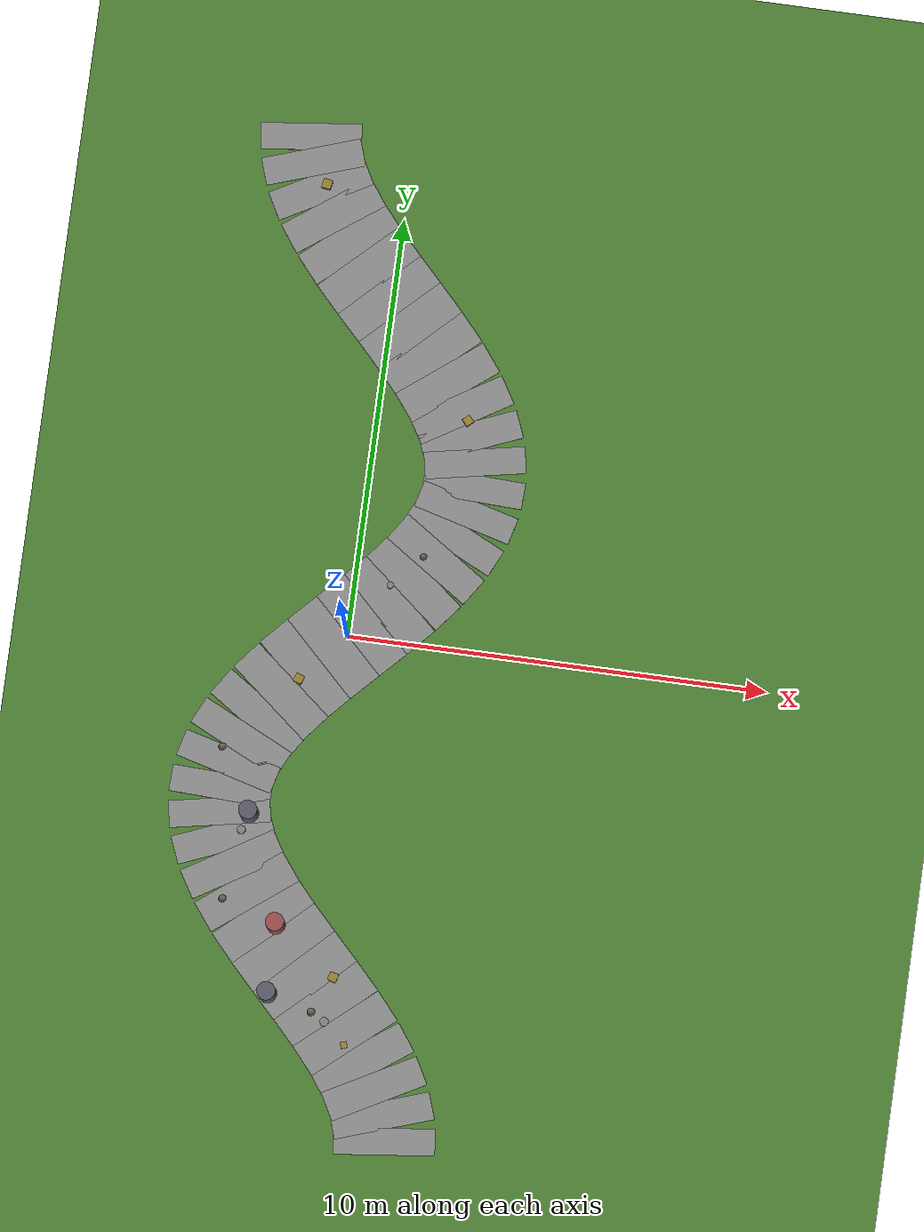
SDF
<?xml version="1.0" ?>
<sdf version="1.9">
  <world name="s_curve">
    <physics name="1ms" type="ignore">
      <max_step_size>0.001</max_step_size>
      <real_time_factor>1.0</real_time_factor>
    </physics>
    <plugin filename="gz-sim-physics-system" name="gz::sim::systems::Physics"/>
    <plugin filename="gz-sim-scene-broadcaster-system" name="gz::sim::systems::SceneBroadcaster"/>
    <plugin filename="gz-sim-sensors-system" name="gz::sim::systems::Sensors">
      <render_engine>ogre2</render_engine>
    </plugin>
    <plugin filename="gz-sim-user-commands-system" name="gz::sim::systems::UserCommands"/>

    <light type="directional" name="sun">
      <cast_shadows>true</cast_shadows>
      <pose>0 0 10 0 0 0</pose>
      <diffuse>0.8 0.8 0.8 1</diffuse>
      <specular>0.2 0.2 0.2 1</specular>
      <attenuation><range>1000</range><constant>0.9</constant><linear>0.01</linear><quadratic>0.001</quadratic></attenuation>
      <direction>-0.5 0.1 -0.9</direction>
    </light>

    <!-- 레이아웃 5: S자 커브형 -->

    <model name="ground_plane_visual">
      <static>true</static>
      <pose>0 0 -0.01 0 0 0</pose>
      <link name="link">
        <collision name="collision"><geometry><box><size>60.0 60.0 0.02</size></box></geometry></collision>
        <visual name="visual"><geometry><box><size>60.0 60.0 0.02</size></box></geometry>
          <material><ambient>0.3 0.5 0.2 1</ambient><diffuse>0.3 0.5 0.2 1</diffuse></material></visual>
      </link>
    </model>

    <model name="scurve_tile_0">
      <static>true</static>
      <pose>2.465 -11.700 0.010 0 0 0.1146</pose>
      <link name="link">
        <collision name="collision"><geometry><box><size>2.4 0.634 0.02</size></box></geometry></collision>
        <visual name="visual"><geometry><box><size>2.4 0.634 0.02</size></box></geometry>
          <material><ambient>0.55 0.55 0.55 1</ambient><diffuse>0.55 0.55 0.55 1</diffuse></material></visual>
      </link>
    </model>

    <model name="scurve_tile_1">
      <static>true</static>
      <pose>2.329 -11.100 0.010 0 0 0.3269</pose>
      <link name="link">
        <collision name="collision"><geometry><box><size>2.4 0.665 0.02</size></box></geometry></collision>
        <visual name="visual"><geometry><box><size>2.4 0.665 0.02</size></box></geometry>
          <material><ambient>0.55 0.55 0.55 1</ambient><diffuse>0.55 0.55 0.55 1</diffuse></material></visual>
      </link>
    </model>

    <model name="scurve_tile_2">
      <static>true</static>
      <pose>2.064 -10.500 0.010 0 0 0.4984</pose>
      <link name="link">
        <collision name="collision"><geometry><box><size>2.4 0.717 0.02</size></box></geometry></collision>
        <visual name="visual"><geometry><box><size>2.4 0.717 0.02</size></box></geometry>
          <material><ambient>0.55 0.55 0.55 1</ambient><diffuse>0.55 0.55 0.55 1</diffuse></material></visual>
      </link>
    </model>

    <model name="scurve_tile_3">
      <static>true</static>
      <pose>1.685 -9.900 0.010 0 0 0.6235</pose>
      <link name="link">
        <collision name="collision"><geometry><box><size>2.4 0.776 0.02</size></box></geometry></collision>
        <visual name="visual"><geometry><box><size>2.4 0.776 0.02</size></box></geometry>
          <material><ambient>0.55 0.55 0.55 1</ambient><diffuse>0.55 0.55 0.55 1</diffuse></material></visual>
      </link>
    </model>

    <model name="scurve_tile_4">
      <static>true</static>
      <pose>1.213 -9.300 0.010 0 0 0.7072</pose>
      <link name="link">
        <collision name="collision"><geometry><box><size>2.4 0.829 0.02</size></box></geometry></collision>
        <visual name="visual"><geometry><box><size>2.4 0.829 0.02</size></box></geometry>
          <material><ambient>0.55 0.55 0.55 1</ambient><diffuse>0.55 0.55 0.55 1</diffuse></material></visual>
      </link>
    </model>

    <model name="scurve_tile_5">
      <static>true</static>
      <pose>0.674 -8.700 0.010 0 0 0.7559</pose>
      <link name="link">
        <collision name="collision"><geometry><box><size>2.4 0.866 0.02</size></box></geometry></collision>
        <visual name="visual"><geometry><box><size>2.4 0.866 0.02</size></box></geometry>
          <material><ambient>0.55 0.55 0.55 1</ambient><diffuse>0.55 0.55 0.55 1</diffuse></material></visual>
      </link>
    </model>

    <model name="scurve_tile_6">
      <static>true</static>
      <pose>0.097 -8.100 0.010 0 0 0.7746</pose>
      <link name="link">
        <collision name="collision"><geometry><box><size>2.4 0.882 0.02</size></box></geometry></collision>
        <visual name="visual"><geometry><box><size>2.4 0.882 0.02</size></box></geometry>
          <material><ambient>0.55 0.55 0.55 1</ambient><diffuse>0.55 0.55 0.55 1</diffuse></material></visual>
      </link>
    </model>

    <model name="scurve_tile_7">
      <static>true</static>
      <pose>-0.484 -7.500 0.010 0 0 0.7653</pose>
      <link name="link">
        <collision name="collision"><geometry><box><size>2.4 0.874 0.02</size></box></geometry></collision>
        <visual name="visual"><geometry><box><size>2.4 0.874 0.02</size></box></geometry>
          <material><ambient>0.55 0.55 0.55 1</ambient><diffuse>0.55 0.55 0.55 1</diffuse></material></visual>
      </link>
    </model>

    <model name="scurve_tile_8">
      <static>true</static>
      <pose>-1.039 -6.900 0.010 0 0 0.7270</pose>
      <link name="link">
        <collision name="collision"><geometry><box><size>2.4 0.843 0.02</size></box></geometry></collision>
        <visual name="visual"><geometry><box><size>2.4 0.843 0.02</size></box></geometry>
          <material><ambient>0.55 0.55 0.55 1</ambient><diffuse>0.55 0.55 0.55 1</diffuse></material></visual>
      </link>
    </model>

    <model name="scurve_tile_9">
      <static>true</static>
      <pose>-1.537 -6.300 0.010 0 0 0.6557</pose>
      <link name="link">
        <collision name="collision"><geometry><box><size>2.4 0.795 0.02</size></box></geometry></collision>
        <visual name="visual"><geometry><box><size>2.4 0.795 0.02</size></box></geometry>
          <material><ambient>0.55 0.55 0.55 1</ambient><diffuse>0.55 0.55 0.55 1</diffuse></material></visual>
      </link>
    </model>

    <model name="scurve_tile_10">
      <static>true</static>
      <pose>-1.950 -5.700 0.010 0 0 0.5451</pose>
      <link name="link">
        <collision name="collision"><geometry><box><size>2.4 0.737 0.02</size></box></geometry></collision>
        <visual name="visual"><geometry><box><size>2.4 0.737 0.02</size></box></geometry>
          <material><ambient>0.55 0.55 0.55 1</ambient><diffuse>0.55 0.55 0.55 1</diffuse></material></visual>
      </link>
    </model>

    <model name="scurve_tile_11">
      <static>true</static>
      <pose>-2.255 -5.100 0.010 0 0 0.3892</pose>
      <link name="link">
        <collision name="collision"><geometry><box><size>2.4 0.681 0.02</size></box></geometry></collision>
        <visual name="visual"><geometry><box><size>2.4 0.681 0.02</size></box></geometry>
          <material><ambient>0.55 0.55 0.55 1</ambient><diffuse>0.55 0.55 0.55 1</diffuse></material></visual>
      </link>
    </model>

    <model name="scurve_tile_12">
      <static>true</static>
      <pose>-2.435 -4.500 0.010 0 0 0.1888</pose>
      <link name="link">
        <collision name="collision"><geometry><box><size>2.4 0.641 0.02</size></box></geometry></collision>
        <visual name="visual"><geometry><box><size>2.4 0.641 0.02</size></box></geometry>
          <material><ambient>0.55 0.55 0.55 1</ambient><diffuse>0.55 0.55 0.55 1</diffuse></material></visual>
      </link>
    </model>

    <model name="scurve_tile_13">
      <static>true</static>
      <pose>-2.481 -3.900 0.010 0 0 -0.0384</pose>
      <link name="link">
        <collision name="collision"><geometry><box><size>2.4 0.630 0.02</size></box></geometry></collision>
        <visual name="visual"><geometry><box><size>2.4 0.630 0.02</size></box></geometry>
          <material><ambient>0.55 0.55 0.55 1</ambient><diffuse>0.55 0.55 0.55 1</diffuse></material></visual>
      </link>
    </model>

    <model name="scurve_tile_14">
      <static>true</static>
      <pose>-2.389 -3.300 0.010 0 0 -0.2599</pose>
      <link name="link">
        <collision name="collision"><geometry><box><size>2.4 0.652 0.02</size></box></geometry></collision>
        <visual name="visual"><geometry><box><size>2.4 0.652 0.02</size></box></geometry>
          <material><ambient>0.55 0.55 0.55 1</ambient><diffuse>0.55 0.55 0.55 1</diffuse></material></visual>
      </link>
    </model>

    <model name="scurve_tile_15">
      <static>true</static>
      <pose>-2.166 -2.700 0.010 0 0 -0.4464</pose>
      <link name="link">
        <collision name="collision"><geometry><box><size>2.4 0.698 0.02</size></box></geometry></collision>
        <visual name="visual"><geometry><box><size>2.4 0.698 0.02</size></box></geometry>
          <material><ambient>0.55 0.55 0.55 1</ambient><diffuse>0.55 0.55 0.55 1</diffuse></material></visual>
      </link>
    </model>

    <model name="scurve_tile_16">
      <static>true</static>
      <pose>-1.823 -2.100 0.010 0 0 -0.5868</pose>
      <link name="link">
        <collision name="collision"><geometry><box><size>2.4 0.757 0.02</size></box></geometry></collision>
        <visual name="visual"><geometry><box><size>2.4 0.757 0.02</size></box></geometry>
          <material><ambient>0.55 0.55 0.55 1</ambient><diffuse>0.55 0.55 0.55 1</diffuse></material></visual>
      </link>
    </model>

    <model name="scurve_tile_17">
      <static>true</static>
      <pose>-1.379 -1.500 0.010 0 0 -0.6835</pose>
      <link name="link">
        <collision name="collision"><geometry><box><size>2.4 0.812 0.02</size></box></geometry></collision>
        <visual name="visual"><geometry><box><size>2.4 0.812 0.02</size></box></geometry>
          <material><ambient>0.55 0.55 0.55 1</ambient><diffuse>0.55 0.55 0.55 1</diffuse></material></visual>
      </link>
    </model>

    <model name="scurve_tile_18">
      <static>true</static>
      <pose>-0.859 -0.900 0.010 0 0 -0.7432</pose>
      <link name="link">
        <collision name="collision"><geometry><box><size>2.4 0.856 0.02</size></box></geometry></collision>
        <visual name="visual"><geometry><box><size>2.4 0.856 0.02</size></box></geometry>
          <material><ambient>0.55 0.55 0.55 1</ambient><diffuse>0.55 0.55 0.55 1</diffuse></material></visual>
      </link>
    </model>

    <model name="scurve_tile_19">
      <static>true</static>
      <pose>-0.292 -0.300 0.010 0 0 -0.7716</pose>
      <link name="link">
        <collision name="collision"><geometry><box><size>2.4 0.879 0.02</size></box></geometry></collision>
        <visual name="visual"><geometry><box><size>2.4 0.879 0.02</size></box></geometry>
          <material><ambient>0.55 0.55 0.55 1</ambient><diffuse>0.55 0.55 0.55 1</diffuse></material></visual>
      </link>
    </model>

    <model name="scurve_tile_20">
      <static>true</static>
      <pose>0.292 0.300 0.010 0 0 -0.7716</pose>
      <link name="link">
        <collision name="collision"><geometry><box><size>2.4 0.879 0.02</size></box></geometry></collision>
        <visual name="visual"><geometry><box><size>2.4 0.879 0.02</size></box></geometry>
          <material><ambient>0.55 0.55 0.55 1</ambient><diffuse>0.55 0.55 0.55 1</diffuse></material></visual>
      </link>
    </model>

    <model name="scurve_tile_21">
      <static>true</static>
      <pose>0.859 0.900 0.010 0 0 -0.7432</pose>
      <link name="link">
        <collision name="collision"><geometry><box><size>2.4 0.856 0.02</size></box></geometry></collision>
        <visual name="visual"><geometry><box><size>2.4 0.856 0.02</size></box></geometry>
          <material><ambient>0.55 0.55 0.55 1</ambient><diffuse>0.55 0.55 0.55 1</diffuse></material></visual>
      </link>
    </model>

    <model name="scurve_tile_22">
      <static>true</static>
      <pose>1.379 1.500 0.010 0 0 -0.6835</pose>
      <link name="link">
        <collision name="collision"><geometry><box><size>2.4 0.812 0.02</size></box></geometry></collision>
        <visual name="visual"><geometry><box><size>2.4 0.812 0.02</size></box></geometry>
          <material><ambient>0.55 0.55 0.55 1</ambient><diffuse>0.55 0.55 0.55 1</diffuse></material></visual>
      </link>
    </model>

    <model name="scurve_tile_23">
      <static>true</static>
      <pose>1.823 2.100 0.010 0 0 -0.5868</pose>
      <link name="link">
        <collision name="collision"><geometry><box><size>2.4 0.757 0.02</size></box></geometry></collision>
        <visual name="visual"><geometry><box><size>2.4 0.757 0.02</size></box></geometry>
          <material><ambient>0.55 0.55 0.55 1</ambient><diffuse>0.55 0.55 0.55 1</diffuse></material></visual>
      </link>
    </model>

    <model name="scurve_tile_24">
      <static>true</static>
      <pose>2.166 2.700 0.010 0 0 -0.4464</pose>
      <link name="link">
        <collision name="collision"><geometry><box><size>2.4 0.698 0.02</size></box></geometry></collision>
        <visual name="visual"><geometry><box><size>2.4 0.698 0.02</size></box></geometry>
          <material><ambient>0.55 0.55 0.55 1</ambient><diffuse>0.55 0.55 0.55 1</diffuse></material></visual>
      </link>
    </model>

    <model name="scurve_tile_25">
      <static>true</static>
      <pose>2.389 3.300 0.010 0 0 -0.2599</pose>
      <link name="link">
        <collision name="collision"><geometry><box><size>2.4 0.652 0.02</size></box></geometry></collision>
        <visual name="visual"><geometry><box><size>2.4 0.652 0.02</size></box></geometry>
          <material><ambient>0.55 0.55 0.55 1</ambient><diffuse>0.55 0.55 0.55 1</diffuse></material></visual>
      </link>
    </model>

    <model name="scurve_tile_26">
      <static>true</static>
      <pose>2.481 3.900 0.010 0 0 -0.0384</pose>
      <link name="link">
        <collision name="collision"><geometry><box><size>2.4 0.630 0.02</size></box></geometry></collision>
        <visual name="visual"><geometry><box><size>2.4 0.630 0.02</size></box></geometry>
          <material><ambient>0.55 0.55 0.55 1</ambient><diffuse>0.55 0.55 0.55 1</diffuse></material></visual>
      </link>
    </model>

    <model name="scurve_tile_27">
      <static>true</static>
      <pose>2.435 4.500 0.010 0 0 0.1888</pose>
      <link name="link">
        <collision name="collision"><geometry><box><size>2.4 0.641 0.02</size></box></geometry></collision>
        <visual name="visual"><geometry><box><size>2.4 0.641 0.02</size></box></geometry>
          <material><ambient>0.55 0.55 0.55 1</ambient><diffuse>0.55 0.55 0.55 1</diffuse></material></visual>
      </link>
    </model>

    <model name="scurve_tile_28">
      <static>true</static>
      <pose>2.255 5.100 0.010 0 0 0.3892</pose>
      <link name="link">
        <collision name="collision"><geometry><box><size>2.4 0.681 0.02</size></box></geometry></collision>
        <visual name="visual"><geometry><box><size>2.4 0.681 0.02</size></box></geometry>
          <material><ambient>0.55 0.55 0.55 1</ambient><diffuse>0.55 0.55 0.55 1</diffuse></material></visual>
      </link>
    </model>

    <model name="scurve_tile_29">
      <static>true</static>
      <pose>1.950 5.700 0.010 0 0 0.5451</pose>
      <link name="link">
        <collision name="collision"><geometry><box><size>2.4 0.737 0.02</size></box></geometry></collision>
        <visual name="visual"><geometry><box><size>2.4 0.737 0.02</size></box></geometry>
          <material><ambient>0.55 0.55 0.55 1</ambient><diffuse>0.55 0.55 0.55 1</diffuse></material></visual>
      </link>
    </model>

    <model name="scurve_tile_30">
      <static>true</static>
      <pose>1.537 6.300 0.010 0 0 0.6557</pose>
      <link name="link">
        <collision name="collision"><geometry><box><size>2.4 0.795 0.02</size></box></geometry></collision>
        <visual name="visual"><geometry><box><size>2.4 0.795 0.02</size></box></geometry>
          <material><ambient>0.55 0.55 0.55 1</ambient><diffuse>0.55 0.55 0.55 1</diffuse></material></visual>
      </link>
    </model>

    <model name="scurve_tile_31">
      <static>true</static>
      <pose>1.039 6.900 0.010 0 0 0.7270</pose>
      <link name="link">
        <collision name="collision"><geometry><box><size>2.4 0.843 0.02</size></box></geometry></collision>
        <visual name="visual"><geometry><box><size>2.4 0.843 0.02</size></box></geometry>
          <material><ambient>0.55 0.55 0.55 1</ambient><diffuse>0.55 0.55 0.55 1</diffuse></material></visual>
      </link>
    </model>

    <model name="scurve_tile_32">
      <static>true</static>
      <pose>0.484 7.500 0.010 0 0 0.7653</pose>
      <link name="link">
        <collision name="collision"><geometry><box><size>2.4 0.874 0.02</size></box></geometry></collision>
        <visual name="visual"><geometry><box><size>2.4 0.874 0.02</size></box></geometry>
          <material><ambient>0.55 0.55 0.55 1</ambient><diffuse>0.55 0.55 0.55 1</diffuse></material></visual>
      </link>
    </model>

    <model name="scurve_tile_33">
      <static>true</static>
      <pose>-0.097 8.100 0.010 0 0 0.7746</pose>
      <link name="link">
        <collision name="collision"><geometry><box><size>2.4 0.882 0.02</size></box></geometry></collision>
        <visual name="visual"><geometry><box><size>2.4 0.882 0.02</size></box></geometry>
          <material><ambient>0.55 0.55 0.55 1</ambient><diffuse>0.55 0.55 0.55 1</diffuse></material></visual>
      </link>
    </model>

    <model name="scurve_tile_34">
      <static>true</static>
      <pose>-0.674 8.700 0.010 0 0 0.7559</pose>
      <link name="link">
        <collision name="collision"><geometry><box><size>2.4 0.866 0.02</size></box></geometry></collision>
        <visual name="visual"><geometry><box><size>2.4 0.866 0.02</size></box></geometry>
          <material><ambient>0.55 0.55 0.55 1</ambient><diffuse>0.55 0.55 0.55 1</diffuse></material></visual>
      </link>
    </model>

    <model name="scurve_tile_35">
      <static>true</static>
      <pose>-1.213 9.300 0.010 0 0 0.7072</pose>
      <link name="link">
        <collision name="collision"><geometry><box><size>2.4 0.829 0.02</size></box></geometry></collision>
        <visual name="visual"><geometry><box><size>2.4 0.829 0.02</size></box></geometry>
          <material><ambient>0.55 0.55 0.55 1</ambient><diffuse>0.55 0.55 0.55 1</diffuse></material></visual>
      </link>
    </model>

    <model name="scurve_tile_36">
      <static>true</static>
      <pose>-1.685 9.900 0.010 0 0 0.6235</pose>
      <link name="link">
        <collision name="collision"><geometry><box><size>2.4 0.776 0.02</size></box></geometry></collision>
        <visual name="visual"><geometry><box><size>2.4 0.776 0.02</size></box></geometry>
          <material><ambient>0.55 0.55 0.55 1</ambient><diffuse>0.55 0.55 0.55 1</diffuse></material></visual>
      </link>
    </model>

    <model name="scurve_tile_37">
      <static>true</static>
      <pose>-2.064 10.500 0.010 0 0 0.4984</pose>
      <link name="link">
        <collision name="collision"><geometry><box><size>2.4 0.717 0.02</size></box></geometry></collision>
        <visual name="visual"><geometry><box><size>2.4 0.717 0.02</size></box></geometry>
          <material><ambient>0.55 0.55 0.55 1</ambient><diffuse>0.55 0.55 0.55 1</diffuse></material></visual>
      </link>
    </model>

    <model name="scurve_tile_38">
      <static>true</static>
      <pose>-2.329 11.100 0.010 0 0 0.3269</pose>
      <link name="link">
        <collision name="collision"><geometry><box><size>2.4 0.665 0.02</size></box></geometry></collision>
        <visual name="visual"><geometry><box><size>2.4 0.665 0.02</size></box></geometry>
          <material><ambient>0.55 0.55 0.55 1</ambient><diffuse>0.55 0.55 0.55 1</diffuse></material></visual>
      </link>
    </model>

    <model name="scurve_tile_39">
      <static>true</static>
      <pose>-2.465 11.700 0.010 0 0 0.1146</pose>
      <link name="link">
        <collision name="collision"><geometry><box><size>2.4 0.634 0.02</size></box></geometry></collision>
        <visual name="visual"><geometry><box><size>2.4 0.634 0.02</size></box></geometry>
          <material><ambient>0.55 0.55 0.55 1</ambient><diffuse>0.55 0.55 0.55 1</diffuse></material></visual>
      </link>
    </model>

    <model name="scurve_obstacle_0">
      <static>true</static>
      <pose>0.35 -8.91 0.12 0 0 0</pose>
      <link name="link">
        <collision name="collision"><geometry><sphere><radius>0.09782147071099964</radius></sphere></geometry></collision>
        <visual name="visual"><geometry><sphere><radius>0.09782147071099964</radius></sphere></geometry>
          <material><ambient>0.4 0.35 0.3 1</ambient><diffuse>0.4 0.35 0.3 1</diffuse></material></visual>
      </link>
    </model>

    <model name="scurve_obstacle_1">
      <static>true</static>
      <pose>-1.86 -4.87 0.12 0 0 0</pose>
      <link name="link">
        <collision name="collision"><geometry><cylinder><radius>0.10069207774506439</radius><length>0.20138415549012878</length></cylinder></geometry></collision>
        <visual name="visual"><geometry><cylinder><radius>0.10069207774506439</radius><length>0.20138415549012878</length></cylinder></geometry>
          <material><ambient>0.5 0.5 0.5 1</ambient><diffuse>0.5 0.5 0.5 1</diffuse></material></visual>
      </link>
    </model>

    <model name="scurve_obstacle_2">
      <static>true</static>
      <pose>-1.00 -1.15 0.13 0 0 1.22</pose>
      <link name="link">
        <collision name="collision"><geometry><box><size>0.21 0.21 0.21</size></box></geometry></collision>
        <visual name="visual"><geometry><box><size>0.21 0.21 0.21</size></box></geometry>
          <material><ambient>0.6 0.5 0.2 1</ambient><diffuse>0.6 0.5 0.2 1</diffuse></material></visual>
      </link>
    </model>

    <model name="scurve_obstacle_3">
      <static>true</static>
      <pose>0.76 -8.03 0.13 0 0 1.27</pose>
      <link name="link">
        <collision name="collision"><geometry><box><size>0.21 0.21 0.21</size></box></geometry></collision>
        <visual name="visual"><geometry><box><size>0.21 0.21 0.21</size></box></geometry>
          <material><ambient>0.6 0.5 0.2 1</ambient><diffuse>0.6 0.5 0.2 1</diffuse></material></visual>
      </link>
    </model>

    <model name="scurve_obstacle_4">
      <static>true</static>
      <pose>-2.57 -2.98 0.11 0 0 0</pose>
      <link name="link">
        <collision name="collision"><geometry><sphere><radius>0.09306940455168206</radius></sphere></geometry></collision>
        <visual name="visual"><geometry><sphere><radius>0.09306940455168206</radius></sphere></geometry>
          <material><ambient>0.4 0.35 0.3 1</ambient><diffuse>0.4 0.35 0.3 1</diffuse></material></visual>
      </link>
    </model>

    <model name="scurve_obstacle_5">
      <static>true</static>
      <pose>0.84 1.34 0.10 0 0 0</pose>
      <link name="link">
        <collision name="collision"><geometry><cylinder><radius>0.08077318866082418</radius><length>0.16154637732164837</length></cylinder></geometry></collision>
        <visual name="visual"><geometry><cylinder><radius>0.08077318866082418</radius><length>0.16154637732164837</length></cylinder></geometry>
          <material><ambient>0.5 0.5 0.5 1</ambient><diffuse>0.5 0.5 0.5 1</diffuse></material></visual>
      </link>
    </model>

    <model name="scurve_obstacle_6">
      <static>true</static>
      <pose>1.22 -9.58 0.10 0 0 0.32</pose>
      <link name="link">
        <collision name="collision"><geometry><box><size>0.15 0.15 0.15</size></box></geometry></collision>
        <visual name="visual"><geometry><box><size>0.15 0.15 0.15</size></box></geometry>
          <material><ambient>0.6 0.5 0.2 1</ambient><diffuse>0.6 0.5 0.2 1</diffuse></material></visual>
      </link>
    </model>

    <model name="scurve_obstacle_7">
      <static>true</static>
      <pose>-1.93 10.60 0.13 0 0 1.41</pose>
      <link name="link">
        <collision name="collision"><geometry><box><size>0.22 0.22 0.22</size></box></geometry></collision>
        <visual name="visual"><geometry><box><size>0.22 0.22 0.22</size></box></geometry>
          <material><ambient>0.6 0.5 0.2 1</ambient><diffuse>0.6 0.5 0.2 1</diffuse></material></visual>
      </link>
    </model>

    <model name="scurve_obstacle_8">
      <static>true</static>
      <pose>0.69 -9.10 0.13 0 0 0</pose>
      <link name="link">
        <collision name="collision"><geometry><cylinder><radius>0.10601542118119896</radius><length>0.21203084236239791</length></cylinder></geometry></collision>
        <visual name="visual"><geometry><cylinder><radius>0.10601542118119896</radius><length>0.21203084236239791</length></cylinder></geometry>
          <material><ambient>0.5 0.5 0.5 1</ambient><diffuse>0.5 0.5 0.5 1</diffuse></material></visual>
      </link>
    </model>

    <model name="scurve_obstacle_9">
      <static>true</static>
      <pose>1.53 2.11 0.10 0 0 0</pose>
      <link name="link">
        <collision name="collision"><geometry><sphere><radius>0.08134193130038424</radius></sphere></geometry></collision>
        <visual name="visual"><geometry><sphere><radius>0.08134193130038424</radius></sphere></geometry>
          <material><ambient>0.4 0.35 0.3 1</ambient><diffuse>0.4 0.35 0.3 1</diffuse></material></visual>
      </link>
    </model>

    <model name="scurve_obstacle_10">
      <static>true</static>
      <pose>2.14 5.45 0.12 0 0 0.71</pose>
      <link name="link">
        <collision name="collision"><geometry><box><size>0.20 0.20 0.20</size></box></geometry></collision>
        <visual name="visual"><geometry><box><size>0.20 0.20 0.20</size></box></geometry>
          <material><ambient>0.6 0.5 0.2 1</ambient><diffuse>0.6 0.5 0.2 1</diffuse></material></visual>
      </link>
    </model>

    <model name="scurve_obstacle_11">
      <static>true</static>
      <pose>-2.08 -6.54 0.11 0 0 0</pose>
      <link name="link">
        <collision name="collision"><geometry><sphere><radius>0.09251680436664605</radius></sphere></geometry></collision>
        <visual name="visual"><geometry><sphere><radius>0.09251680436664605</radius></sphere></geometry>
          <material><ambient>0.4 0.35 0.3 1</ambient><diffuse>0.4 0.35 0.3 1</diffuse></material></visual>
      </link>
    </model>

    <model name="scurve_ped_static_0">
      <static>true</static>
      <pose>-0.72 -8.62 0.85 0 0 0</pose>
      <link name="link">
        <collision name="collision"><geometry><cylinder><radius>0.22</radius><length>1.7</length></cylinder></geometry></collision>
        <visual name="visual"><geometry><cylinder><radius>0.22</radius><length>1.7</length></cylinder></geometry>
          <material><ambient>0.35 0.35 0.4 1</ambient><diffuse>0.35 0.35 0.4 1</diffuse></material></visual>
      </link>
    </model>

    <model name="scurve_ped_static_1">
      <static>true</static>
      <pose>-1.72 -4.47 0.85 0 0 0</pose>
      <link name="link">
        <collision name="collision"><geometry><cylinder><radius>0.22</radius><length>1.7</length></cylinder></geometry></collision>
        <visual name="visual"><geometry><cylinder><radius>0.22</radius><length>1.7</length></cylinder></geometry>
          <material><ambient>0.35 0.35 0.4 1</ambient><diffuse>0.35 0.35 0.4 1</diffuse></material></visual>
      </link>
    </model>

    <model name="scurve_ped_dynamic_0">
      <static>false</static>
      <pose>-0.74 -6.99 0.85 0 0 0</pose>
      <link name="link">
        <collision name="collision"><geometry><cylinder><radius>0.22</radius><length>1.7</length></cylinder></geometry></collision>
        <visual name="visual"><geometry><cylinder><radius>0.22</radius><length>1.7</length></cylinder></geometry>
          <material><ambient>0.6 0.3 0.3 1</ambient><diffuse>0.6 0.3 0.3 1</diffuse></material></visual>
      </link>
    </model>

  </world>
</sdf>
